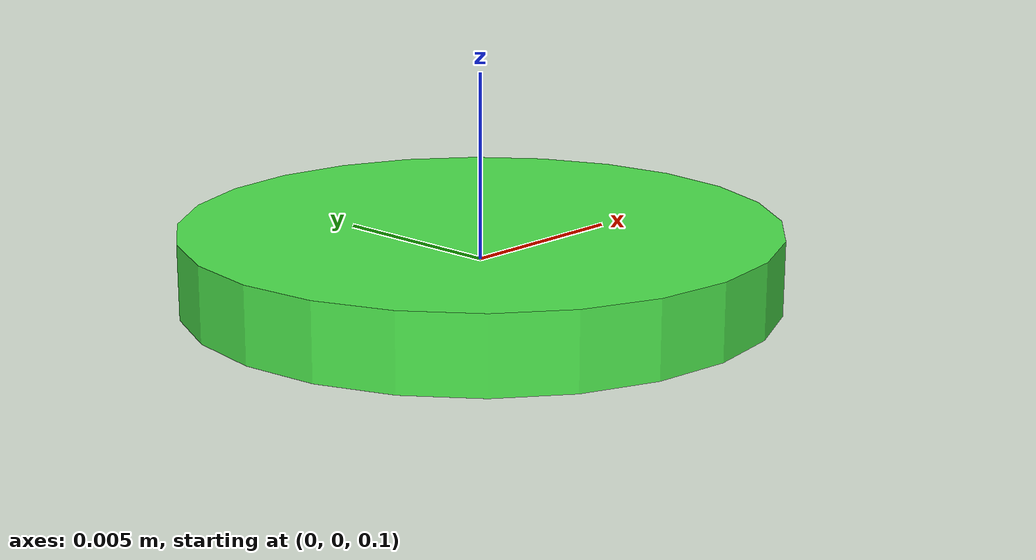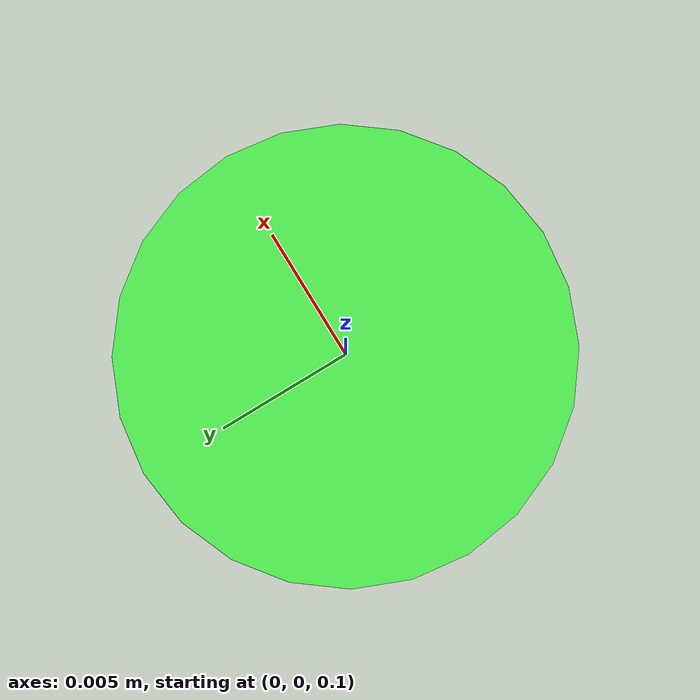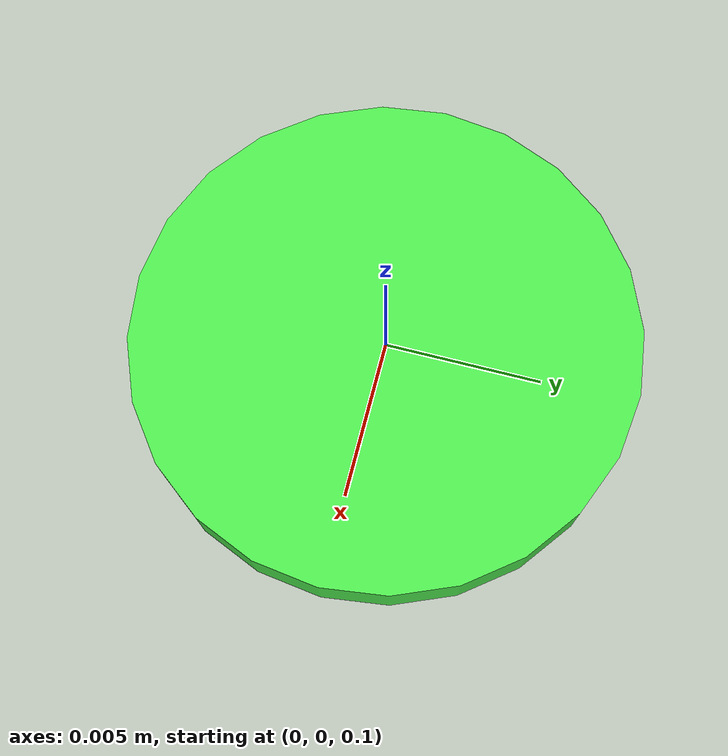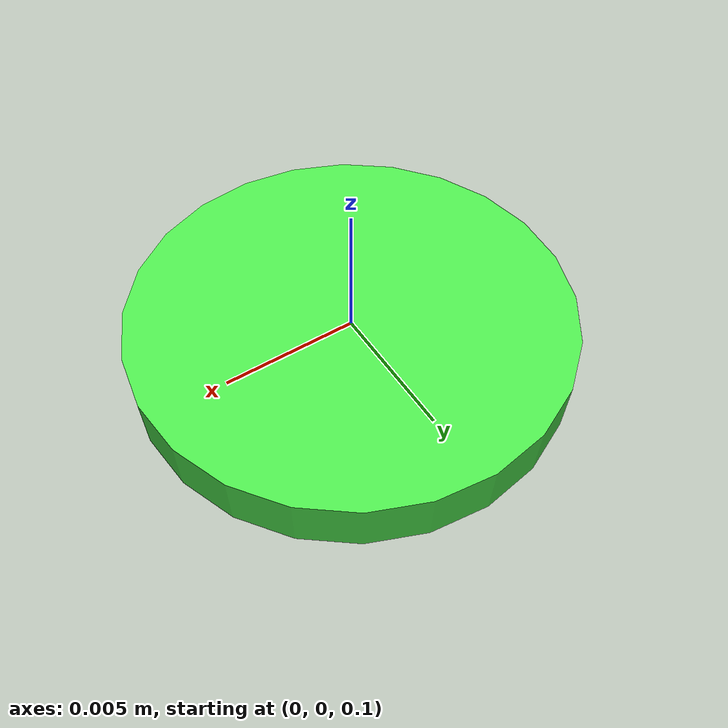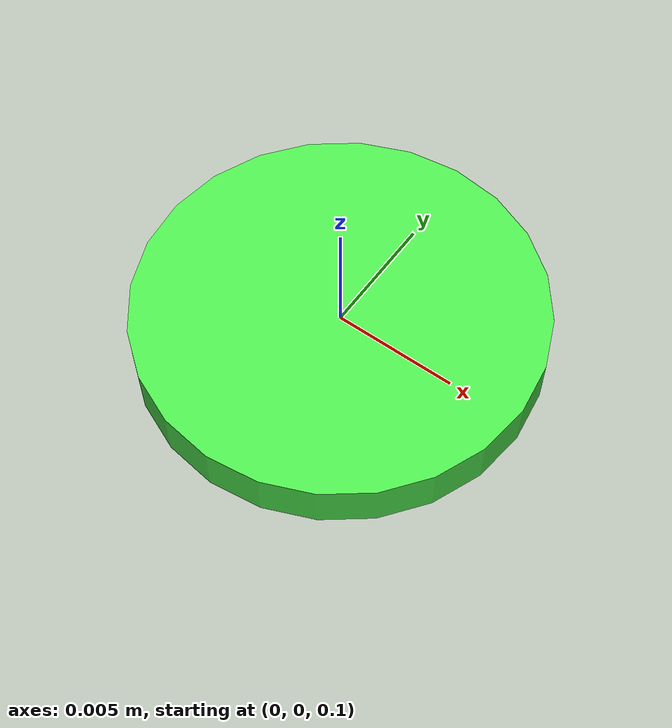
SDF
<?xml version="1.0"?>
<sdf version="1.6">
  <world name="tactile_force_test">

    <include><uri>model://sun</uri></include>
    <include><uri>model://ground_plane</uri></include>

    <light name="ambient_light" type="directional">
      <pose>0 0 10 0 0 0</pose>
      <diffuse>0.8 0.8 0.8 1</diffuse>
      <specular>0.2 0.2 0.2 1</specular>
      <direction>-0.5 -0.5 -1</direction>
      <cast_shadows>true</cast_shadows>
    </light>

    <model name="force_probe">
      <pose>0 0 0.10 0 0 0</pose>

      <link name="probe_link">
        <gravity>false</gravity>
        <inertial>
          <mass>0.1</mass>
          <inertia>
            <!-- Solid cylinder: ixx=iyy=m(3r²+h²)/12, izz=mr²/2 -->
            <ixx>1.653e-6</ixx>
            <iyy>1.653e-6</iyy>
            <izz>3.2e-6</izz>
            <ixy>0.0</ixy><ixz>0.0</ixz><iyz>0.0</iyz>
          </inertia>
        </inertial>

        <collision name="probe_tip">
          <geometry>
            <cylinder>
              <radius>0.008</radius>
              <length>0.002</length>
            </cylinder>
          </geometry>
          <surface>
            <contact>
              <ode>
                <kp>10000.0</kp>
                <kd>50.0</kd>
                <max_vel>0.01</max_vel>
                <min_depth>0.0001</min_depth>
              </ode>
            </contact>
            <friction>
              <ode><mu>0.5</mu><mu2>0.5</mu2></ode>
            </friction>
          </surface>
        </collision>

        <!-- Visual matches collision exactly -->
        <visual name="probe_visual">
          <geometry>
            <cylinder>
              <radius>0.008</radius>
              <length>0.002</length>
            </cylinder>
          </geometry>
          <material>
            <ambient>0.2 0.8 0.2 1</ambient>
            <diffuse>0.3 0.9 0.3 1</diffuse>
          </material>
        </visual>
      </link>

    </model>

    <physics type="ode">
      <real_time_update_rate>1000</real_time_update_rate>
      <max_step_size>0.001</max_step_size>
      <ode>
        <solver>
          <type>quick</type>
          <iters>50</iters>
          <sor>1.3</sor>
        </solver>
        <constraints>
          <cfm>0.0</cfm>
          <erp>0.2</erp>
          <contact_max_correcting_vel>100.0</contact_max_correcting_vel>
          <contact_surface_layer>0.0005</contact_surface_layer>
        </constraints>
      </ode>
    </physics>

  </world>
</sdf>
